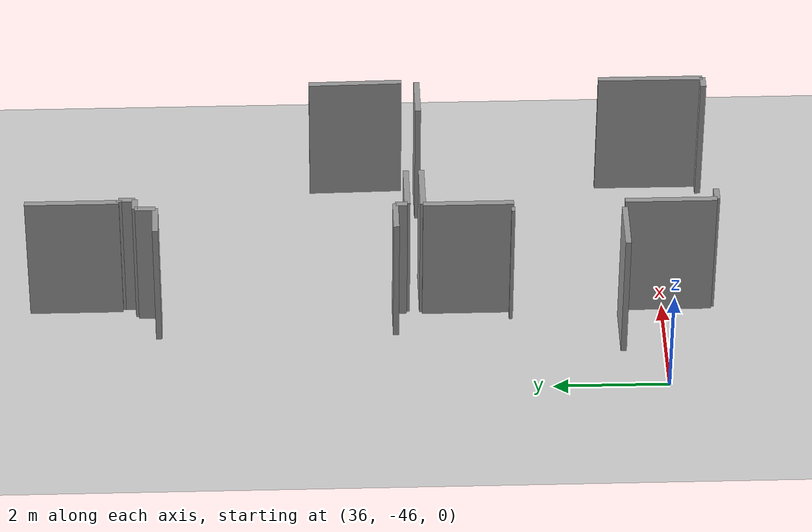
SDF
<sdf version="1.6">
 <world name="default">
  <model name="ground_plane">
   <static>1</static>
   <link name="link">
    <collision name="collision">
     <geometry><plane><normal>0 0 1</normal><size>100 100</size></plane></geometry>
     <surface><friction><ode><mu>100</mu><mu2>50</mu2></ode></friction></surface>
    </collision>
    <visual name="visual">
     <cast_shadows>0</cast_shadows>
     <geometry><plane><normal>0 0 1</normal><size>100 100</size></plane></geometry>
     <material>
      <script><uri>file://media/materials/scripts/gazebo.material</uri><name>Gazebo/Grey</name></script>
     </material>
    </visual>
   </link>
  </model>
  <model name="50025632">
   <static>1</static>
   <link name="Wall_220">
    <collision name="Wall_220_Collision">
     <geometry><box><size>0.85795754031 0.1 2.5</size></box></geometry>
     <pose>0.428978770155 0 1.25 0 0 0</pose>
    </collision>
    <visual name="Wall_220_Visual">
     <pose>0.428978770155 0 1.25 0 0 0</pose>
     <geometry><box><size>0.85795754031 0.1 2.5</size></box></geometry>
     <material>
      <script><uri>file://media/materials/scripts/gazebo.material</uri><name>Gazebo/Grey</name></script>
      <ambient>1 1 1 1</ambient>
     </material>
    </visual>
    <pose>88.9880419389 -90.0075444379 0 0 0 3.14159265359</pose>
   </link>
   <link name="Wall_221">
    <collision name="Wall_221_Collision">
     <geometry><box><size>0.204360278662 0.1 2.5</size></box></geometry>
     <pose>0.102180139331 0 1.25 0 0 0</pose>
    </collision>
    <visual name="Wall_221_Visual">
     <pose>0.102180139331 0 1.25 0 0 0</pose>
     <geometry><box><size>0.204360278662 0.1 2.5</size></box></geometry>
     <material>
      <script><uri>file://media/materials/scripts/gazebo.material</uri><name>Gazebo/Grey</name></script>
      <ambient>1 1 1 1</ambient>
     </material>
    </visual>
    <pose>88.1300843986 -90.0075444379 0 0 0 1.57079632679</pose>
   </link>
   <link name="Wall_222">
    <collision name="Wall_222_Collision">
     <geometry><box><size>0.594410257387 0.1 2.5</size></box></geometry>
     <pose>0.297205128694 0 1.25 0 0 0</pose>
    </collision>
    <visual name="Wall_222_Visual">
     <pose>0.297205128694 0 1.25 0 0 0</pose>
     <geometry><box><size>0.594410257387 0.1 2.5</size></box></geometry>
     <material>
      <script><uri>file://media/materials/scripts/gazebo.material</uri><name>Gazebo/Grey</name></script>
      <ambient>1 1 1 1</ambient>
     </material>
    </visual>
    <pose>88.1300843986 -89.8031841592 0 0 0 3.14159265359</pose>
   </link>
   <link name="Wall_224">
    <collision name="Wall_224_Collision">
     <geometry><box><size>0.587170645278 0.1 2.5</size></box></geometry>
     <pose>0.293585322639 0 1.25 0 0 0</pose>
    </collision>
    <visual name="Wall_224_Visual">
     <pose>0.293585322639 0 1.25 0 0 0</pose>
     <geometry><box><size>0.587170645278 0.1 2.5</size></box></geometry>
     <material>
      <script><uri>file://media/materials/scripts/gazebo.material</uri><name>Gazebo/Grey</name></script>
      <ambient>1 1 1 1</ambient>
     </material>
    </visual>
    <pose>87.5356741412 -85.7002292544 0 0 0 0.0</pose>
   </link>
   <link name="Wall_225">
    <collision name="Wall_225_Collision">
     <geometry><box><size>0.348644477891 0.1 2.5</size></box></geometry>
     <pose>0.174322238945 0 1.25 0 0 0</pose>
    </collision>
    <visual name="Wall_225_Visual">
     <pose>0.174322238945 0 1.25 0 0 0</pose>
     <geometry><box><size>0.348644477891 0.1 2.5</size></box></geometry>
     <material>
      <script><uri>file://media/materials/scripts/gazebo.material</uri><name>Gazebo/Grey</name></script>
      <ambient>1 1 1 1</ambient>
     </material>
    </visual>
    <pose>88.1228447865 -85.7002292544 0 0 0 1.57079632679</pose>
   </link>
   <link name="Wall_226">
    <collision name="Wall_226_Collision">
     <geometry><box><size>0.232429651927 0.1 2.5</size></box></geometry>
     <pose>0.116214825964 0 1.25 0 0 0</pose>
    </collision>
    <visual name="Wall_226_Visual">
     <pose>0.116214825964 0 1.25 0 0 0</pose>
     <geometry><box><size>0.232429651927 0.1 2.5</size></box></geometry>
     <material>
      <script><uri>file://media/materials/scripts/gazebo.material</uri><name>Gazebo/Grey</name></script>
      <ambient>1 1 1 1</ambient>
     </material>
    </visual>
    <pose>88.1228447865 -85.3515847765 0 0 0 0.0</pose>
   </link>
   <link name="Wall_227">
    <collision name="Wall_227_Collision">
     <geometry><box><size>0.274597217195 0.1 2.5</size></box></geometry>
     <pose>0.137298608597 0 1.25 0 0 0</pose>
    </collision>
    <visual name="Wall_227_Visual">
     <pose>0.137298608597 0 1.25 0 0 0</pose>
     <geometry><box><size>0.274597217195 0.1 2.5</size></box></geometry>
     <material>
      <script><uri>file://media/materials/scripts/gazebo.material</uri><name>Gazebo/Grey</name></script>
      <ambient>1 1 1 1</ambient>
     </material>
    </visual>
    <pose>88.3552744385 -85.3515847765 0 0 0 1.57079632679</pose>
   </link>
   <link name="Wall_228">
    <collision name="Wall_228_Collision">
     <geometry><box><size>0.051439349197 0.1 2.5</size></box></geometry>
     <pose>0.0257196745985 0 1.25 0 0 0</pose>
    </collision>
    <visual name="Wall_228_Visual">
     <pose>0.0257196745985 0 1.25 0 0 0</pose>
     <geometry><box><size>0.051439349197 0.1 2.5</size></box></geometry>
     <material>
      <script><uri>file://media/materials/scripts/gazebo.material</uri><name>Gazebo/Grey</name></script>
      <ambient>1 1 1 1</ambient>
     </material>
    </visual>
    <pose>88.3552744385 -85.0769875593 0 0 0 3.14159265359</pose>
   </link>
   <link name="Wall_229">
    <collision name="Wall_229_Collision">
     <geometry><box><size>1.61519556478 0.1 2.5</size></box></geometry>
     <pose>0.807597782392 0 1.25 0 0 0</pose>
    </collision>
    <visual name="Wall_229_Visual">
     <pose>0.807597782392 0 1.25 0 0 0</pose>
     <geometry><box><size>1.61519556478 0.1 2.5</size></box></geometry>
     <material>
      <script><uri>file://media/materials/scripts/gazebo.material</uri><name>Gazebo/Grey</name></script>
      <ambient>1 1 1 1</ambient>
     </material>
    </visual>
    <pose>88.3038350893 -85.0769875593 0 0 0 1.57079632679</pose>
   </link>
   <link name="Wall_258">
    <collision name="Wall_258_Collision">
     <geometry><box><size>1.62798813595 0.1 2.5</size></box></geometry>
     <pose>0.813994067973 0 1.25 0 0 0</pose>
    </collision>
    <visual name="Wall_258_Visual">
     <pose>0.813994067973 0 1.25 0 0 0</pose>
     <geometry><box><size>1.62798813595 0.1 2.5</size></box></geometry>
     <material>
      <script><uri>file://media/materials/scripts/gazebo.material</uri><name>Gazebo/Grey</name></script>
      <ambient>1 1 1 1</ambient>
     </material>
    </visual>
    <pose>91.3505686906 -88.37977481 0 0 0 -1.55441202526</pose>
   </link>
   <link name="Wall_334">
    <collision name="Wall_334_Collision">
     <geometry><box><size>0.0621082512526 0.1 2.5</size></box></geometry>
     <pose>0.0310541256263 0 1.25 0 0 0</pose>
    </collision>
    <visual name="Wall_334_Visual">
     <pose>0.0310541256263 0 1.25 0 0 0</pose>
     <geometry><box><size>0.0621082512526 0.1 2.5</size></box></geometry>
     <material>
      <script><uri>file://media/materials/scripts/gazebo.material</uri><name>Gazebo/Grey</name></script>
      <ambient>1 1 1 1</ambient>
     </material>
    </visual>
    <pose>87.9375361187 -91.7799792972 0 0 0 -1.57079632679</pose>
   </link>
   <link name="Wall_335">
    <collision name="Wall_335_Collision">
     <geometry><box><size>0.926289317762 0.1 2.5</size></box></geometry>
     <pose>0.463144658881 0 1.25 0 0 0</pose>
    </collision>
    <visual name="Wall_335_Visual">
     <pose>0.463144658881 0 1.25 0 0 0</pose>
     <geometry><box><size>0.926289317762 0.1 2.5</size></box></geometry>
     <material>
      <script><uri>file://media/materials/scripts/gazebo.material</uri><name>Gazebo/Grey</name></script>
      <ambient>1 1 1 1</ambient>
     </material>
    </visual>
    <pose>87.9375361187 -93.7185442029 0 0 0 3.14159265359</pose>
   </link>
   <link name="Wall_337">
    <collision name="Wall_337_Collision">
     <geometry><box><size>0.233826770053 0.1 2.5</size></box></geometry>
     <pose>0.116913385027 0 1.25 0 0 0</pose>
    </collision>
    <visual name="Wall_337_Visual">
     <pose>0.116913385027 0 1.25 0 0 0</pose>
     <geometry><box><size>0.233826770053 0.1 2.5</size></box></geometry>
     <material>
      <script><uri>file://media/materials/scripts/gazebo.material</uri><name>Gazebo/Grey</name></script>
      <ambient>1 1 1 1</ambient>
     </material>
    </visual>
    <pose>91.3438371214 -95.3106238132 0 0 0 3.14159265359</pose>
   </link>
   <link name="Wall_338">
    <collision name="Wall_338_Collision">
     <geometry><box><size>0.250592187569 0.1 2.5</size></box></geometry>
     <pose>0.125296093785 0 1.25 0 0 0</pose>
    </collision>
    <visual name="Wall_338_Visual">
     <pose>0.125296093785 0 1.25 0 0 0</pose>
     <geometry><box><size>0.250592187569 0.1 2.5</size></box></geometry>
     <material>
      <script><uri>file://media/materials/scripts/gazebo.material</uri><name>Gazebo/Grey</name></script>
      <ambient>1 1 1 1</ambient>
     </material>
    </visual>
    <pose>88.3625140506 -95.3106238132 0 0 0 3.14159265359</pose>
   </link>
   <link name="Wall_339">
    <collision name="Wall_339_Collision">
     <geometry><box><size>1.57848946128 0.1 2.5</size></box></geometry>
     <pose>0.789244730642 0 1.25 0 0 0</pose>
    </collision>
    <visual name="Wall_339_Visual">
     <pose>0.789244730642 0 1.25 0 0 0</pose>
     <geometry><box><size>1.57848946128 0.1 2.5</size></box></geometry>
     <material>
      <script><uri>file://media/materials/scripts/gazebo.material</uri><name>Gazebo/Grey</name></script>
      <ambient>1 1 1 1</ambient>
     </material>
    </visual>
    <pose>88.111921863 -95.3106238132 0 0 0 1.57079632679</pose>
   </link>
   <link name="Wall_340">
    <collision name="Wall_340_Collision">
     <geometry><box><size>1.55384937796 0.1 2.5</size></box></geometry>
     <pose>0.776924688982 0 1.25 0 0 0</pose>
    </collision>
    <visual name="Wall_340_Visual">
     <pose>0.776924688982 0 1.25 0 0 0</pose>
     <geometry><box><size>1.55384937796 0.1 2.5</size></box></geometry>
     <material>
      <script><uri>file://media/materials/scripts/gazebo.material</uri><name>Gazebo/Grey</name></script>
      <ambient>1 1 1 1</ambient>
     </material>
    </visual>
    <pose>88.111921863 -91.8281163672 0 0 0 1.57079632679</pose>
   </link>
   <link name="Wall_341">
    <collision name="Wall_341_Collision">
     <geometry><box><size>0.88043844107 0.1 2.5</size></box></geometry>
     <pose>0.440219220535 0 1.25 0 0 0</pose>
    </collision>
    <visual name="Wall_341_Visual">
     <pose>0.440219220535 0 1.25 0 0 0</pose>
     <geometry><box><size>0.88043844107 0.1 2.5</size></box></geometry>
     <material>
      <script><uri>file://media/materials/scripts/gazebo.material</uri><name>Gazebo/Grey</name></script>
      <ambient>1 1 1 1</ambient>
     </material>
    </visual>
    <pose>88.111921863 -90.2742669893 0 0 0 0.0</pose>
   </link>
   <link name="Wall_342">
    <collision name="Wall_342_Collision">
     <geometry><box><size>0.776670667505 0.1 2.5</size></box></geometry>
     <pose>0.388335333752 0 1.25 0 0 0</pose>
    </collision>
    <visual name="Wall_342_Visual">
     <pose>0.388335333752 0 1.25 0 0 0</pose>
     <geometry><box><size>0.776670667505 0.1 2.5</size></box></geometry>
     <material>
      <script><uri>file://media/materials/scripts/gazebo.material</uri><name>Gazebo/Grey</name></script>
      <ambient>1 1 1 1</ambient>
     </material>
    </visual>
    <pose>90.5755491627 -90.2742669893 0 0 0 0.0</pose>
   </link>
   <link name="Wall_344">
    <collision name="Wall_344_Collision">
     <geometry><box><size>1.83646740359 0.1 2.5</size></box></geometry>
     <pose>0.918233701794 0 1.25 0 0 0</pose>
    </collision>
    <visual name="Wall_344_Visual">
     <pose>0.918233701794 0 1.25 0 0 0</pose>
     <geometry><box><size>1.83646740359 0.1 2.5</size></box></geometry>
     <material>
      <script><uri>file://media/materials/scripts/gazebo.material</uri><name>Gazebo/Grey</name></script>
      <ambient>1 1 1 1</ambient>
     </material>
    </visual>
    <pose>91.3522198302 -93.4741755415 0 0 0 -1.57536092612</pose>
   </link>
   <pose>-50.15 48.4557939124 0 0 0 0</pose>
  </model>
 </world>
</sdf>
